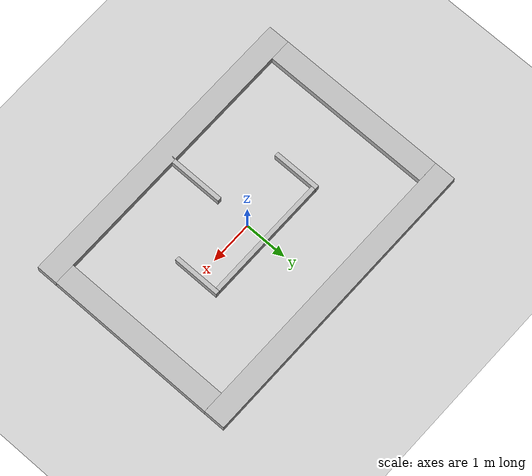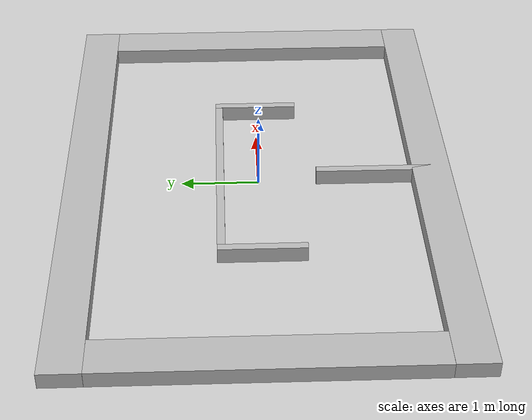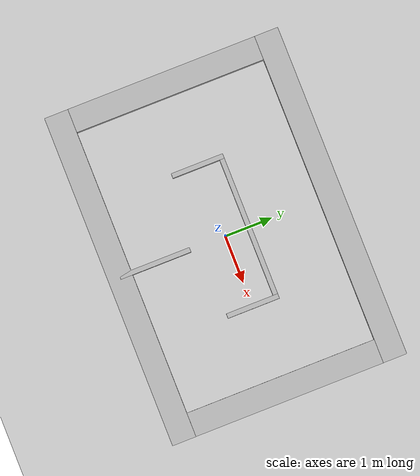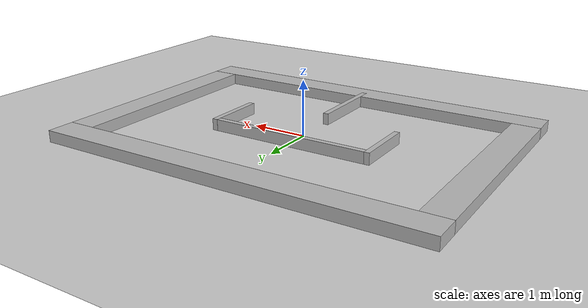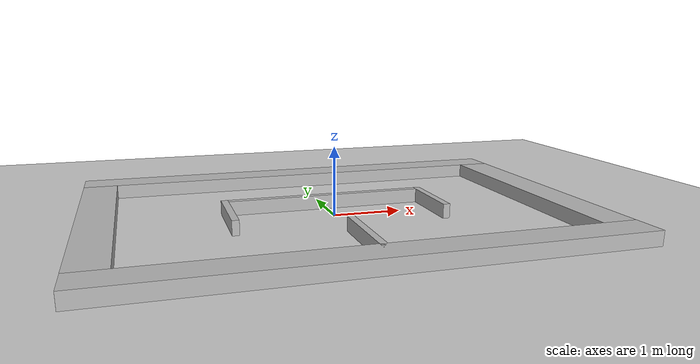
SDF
<sdf version="1.4">
  <world name="default">

    <scene>
      <ambient>0.4 0.4 0.4 1</ambient>
      <background>0.7 0.7 0.7 1</background>
      <shadows>true</shadows>
    </scene>

    <!-- A global light source -->
    <include>
      <uri>model://sun</uri>
    </include>

    <!-- A ground plane -->
    <include>
      <uri>model://ground_plane</uri>
    </include>

    <physics type="ode">
      <real_time_update_rate>1000.0</real_time_update_rate>
      <max_step_size>0.001</max_step_size>
      <real_time_factor>1</real_time_factor>
      <ode>
        <solver>
          <type>quick</type>
          <iters>150</iters>
          <precon_iters>0</precon_iters>
          <sor>1.400000</sor>
          <use_dynamic_moi_rescaling>1</use_dynamic_moi_rescaling>
        </solver>
        <constraints>
          <cfm>0.00001</cfm>
          <erp>0.2</erp>
          <contact_max_correcting_vel>2000.000000</contact_max_correcting_vel>
          <contact_surface_layer>0.01000</contact_surface_layer>
        </constraints>
      </ode>
    </physics>
    <model name="wall-1">
      <pose>0 2.25 0 0 0 0</pose>
      <link name="link">
        <collision name="collision">
          <geometry>
            <box>
              <size>7 0.5 0.4</size>
            </box>
          </geometry>
        </collision>

        <visual name="visual">
          <geometry>
            <box>
              <size>7 0.5 0.4</size>
            </box>
          </geometry>
        </visual>
      </link>
    </model>
    <model name="wall-2">
      <pose>0 -2.25 0 0 0 0</pose>
      <link name="link-2">
        <collision name="collision">
          <geometry>
            <box>
              <size>7 0.5 0.4</size>
            </box>
          </geometry>
        </collision>

        <visual name="visual-2">
          <geometry>
            <box>
              <size>7 0.5 0.4</size>
            </box>
          </geometry>
        </visual>
      </link>
    </model>
    <model name="wall-3">
      <pose>-3.25 0 0 0 0 1.57</pose>
      <link name="link-3">
        <collision name="collision">
          <geometry>
            <box>
              <size>4 0.5 0.4</size>
            </box>
          </geometry>
        </collision>

        <visual name="visual-3">
          <geometry>
            <box>
              <size>4 0.5 0.4</size>
            </box>
          </geometry>
        </visual>
      </link>
    </model>
    <model name="wall-4">
      <pose>3.25 0 0 0 0 1.57</pose>
      <link name="link-4">
        <collision name="collision">
          <geometry>
            <box>
              <size>4 0.5 0.4</size>
            </box>
          </geometry>
        </collision>

        <visual name="visual-4">
          <geometry>
            <box>
              <size>4 0.5 0.4</size>
            </box>
          </geometry>
        </visual>
      </link>
    </model>
    <model name="wall-5">
      <pose>0 0.5 0 0 0 0</pose>
      <link name="link-5">
        <collision name="collision">
          <geometry>
            <box>
              <size>2.9 0.1 0.4</size>
            </box>
          </geometry>
        </collision>

        <visual name="visual-5">
          <geometry>
            <box>
              <size>2.9 0.1 0.4</size>
            </box>
          </geometry>
        </visual>
      </link>
    </model>
    <model name="wall-6">
      <pose>-1.5 0 0 0 0 1.57</pose>
      <link name="link-6">
        <collision name="collision">
          <geometry>
            <box>
              <size>1.1 0.1 0.4</size>
            </box>
          </geometry>
        </collision>

        <visual name="visual-6">
          <geometry>
            <box>
              <size>1.1 0.1 0.4</size>
            </box>
          </geometry>
        </visual>
      </link>
    </model>
    <model name="wall-7">
      <pose>1.5 0 0 0 0 1.57</pose>
      <link name="link-7">
        <collision name="collision">
          <geometry>
            <box>
              <size>1.1 0.1 0.4</size>
            </box>
          </geometry>
        </collision>

        <visual name="visual-7">
          <geometry>
            <box>
              <size>1.1 0.1 0.4</size>
            </box>
          </geometry>
        </visual>
      </link>
    </model>
    <model name="wall-8">
      <pose>0 -1.5 0 0 0 1.57</pose>
      <link name="link-8">
        <collision name="collision">
          <geometry>
            <box>
              <size>1.5 0.1 0.4</size>
            </box>
          </geometry>
        </collision>

        <visual name="visual-8">
          <geometry>
            <box>
              <size>1.5 0.1 0.4</size>
            </box>
          </geometry>
        </visual>
      </link>
    </model>
  </world>

</sdf>
